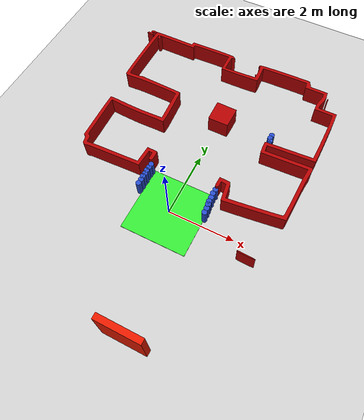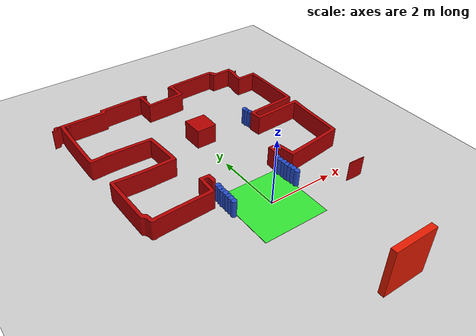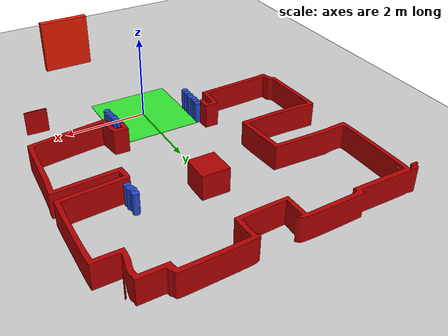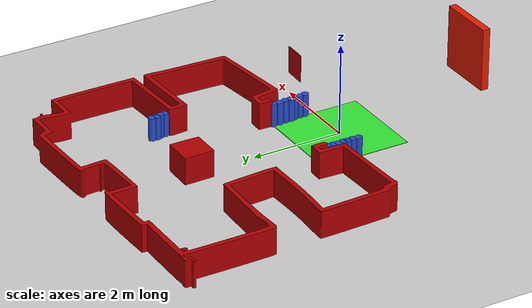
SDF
<sdf version="1.6">
 <world name="default">
  <model name="ground_plane">
   <static>1</static>
   <link name="link">
    <collision name="collision">
     <geometry><plane><normal>0 0 1</normal><size>100 100</size></plane></geometry>
     <surface><friction><ode><mu>100</mu><mu2>50</mu2></ode></friction></surface>
    </collision>
    <visual name="visual">
     <cast_shadows>0</cast_shadows>
     <geometry><plane><normal>0 0 1</normal><size>100 100</size></plane></geometry>
     <material>
      <script><uri>file://media/materials/scripts/gazebo.material</uri><name>Gazebo/Grey</name></script>
     </material>
    </visual>
   </link>
  </model>
  <light name="sun" type="directional">
   <pose>0 0 10 0 -0 0</pose>
   <diffuse>0.8 0.8 0.8 1</diffuse>
   <specular>0.2 0.2 0.2 1</specular>
   <attenuation>
    <range>1000</range>
    <constant>0.9</constant>
    <linear>0.01</linear>
    <quadratic>0.001</quadratic>
   </attenuation>
   <direction>-0.5 0.1 -0.9</direction>
  </light>
  <model name="my_mesh">
   <static>1</static>
   <link name="body">
    <visual name="visual"><geometry><mesh><uri>model://worlds/batlab.dae</uri></mesh></geometry></visual>
    <collision name="visual"><geometry><mesh><uri>model://worlds/batlab.dae</uri></mesh></geometry></collision>
   </link>
  </model>
  <gravity>0 0 -9.8</gravity>
  <magnetic_field>6e-06 2.3e-05 -4.2e-05</magnetic_field>
  <atmosphere type="adiabatic"/>
  <physics name="default_physics" default="0" type="ode">
   <max_step_size>0.001</max_step_size>
   <real_time_factor>1</real_time_factor>
   <real_time_update_rate>1000</real_time_update_rate>
  </physics>
  <scene><ambient>0.4 0.4 0.4 1</ambient><background>0.7 0.7 0.7 1</background><shadows>1</shadows></scene>
  <audio><device>default</device></audio>
  <spherical_coordinates>
   <surface_model>EARTH_WGS84</surface_model>
   <latitude_deg>0</latitude_deg>
   <longitude_deg>0</longitude_deg>
   <elevation>0</elevation>
   <heading_deg>0</heading_deg>
  </spherical_coordinates>
  <model name="start_region">
   <static>1</static>
   <link name="link_0">
    <inertial>
     <mass>1</mass>
     <inertia>
      <ixx>0.166667</ixx>
      <ixy>0</ixy>
      <ixz>0</ixz>
      <iyy>0.166667</iyy>
      <iyz>0</iyz>
      <izz>0.166667</izz>
     </inertia>
    </inertial>
    <visual name="visual">
     <geometry><box><size>2 2 0.01</size></box></geometry>
     <material>
      <lighting>1</lighting>
      <script><uri>file://media/materials/scripts/gazebo.material</uri><name>Gazebo/Grey</name></script>
      <shader type="vertex"><normal_map>__default__</normal_map></shader>
      <ambient>0.2 0.9 0.2 1</ambient>
      <diffuse>0.7 0.7 0.7 1</diffuse>
      <specular>0.01 0.01 0.01 1</specular>
      <emissive>0 0 0 1</emissive>
     </material>
    </visual>
   </link>
   <static>0</static>
   <pose>-0.00388 0.005095 0 0 -0 0</pose>
  </model>
  <model name="Cylinder">
   <static>1</static>
   <link name="link_0">
    <inertial>
     <mass>1</mass>
     <inertia><ixx>0.145833</ixx><ixy>0</ixy><ixz>0</ixz><iyy>0.145833</iyy><iyz>0</iyz><izz>0.125</izz></inertia>
    </inertial>
    <visual name="visual">
     <geometry><cylinder><radius>0.08</radius><length>1</length></cylinder></geometry>
     <material>
      <lighting>1</lighting>
      <script><uri>file://media/materials/scripts/gazebo.material</uri><name>Gazebo/Blue</name></script>
      <ambient>0.3 0 1 1</ambient>
      <diffuse>0.7 0.7 0.7 1</diffuse>
      <specular>0.01 0.01 0.01 1</specular>
      <emissive>0 0 0 1</emissive>
      <shader type="vertex"><normal_map>__default__</normal_map></shader>
     </material>
    </visual>
    <collision name="collision">
     <geometry><cylinder><radius>0.08</radius><length>1</length></cylinder></geometry>
     <surface>
      <friction>
       <ode><mu>1</mu><mu2>1</mu2><fdir1>0 0 0</fdir1><slip1>0</slip1><slip2>0</slip2></ode>
       <torsional>
        <coefficient>1</coefficient>
        <patch_radius>0</patch_radius>
        <surface_radius>0</surface_radius>
        <use_patch_radius>1</use_patch_radius>
        <ode><slip>0</slip></ode>
       </torsional>
      </friction>
      <bounce><restitution_coefficient>0</restitution_coefficient><threshold>1e+06</threshold></bounce>
      <contact>
       <collide_without_contact>0</collide_without_contact>
       <collide_without_contact_bitmask>1</collide_without_contact_bitmask>
       <collide_bitmask>1</collide_bitmask>
       <ode>
        <soft_cfm>0</soft_cfm>
        <soft_erp>0.2</soft_erp>
        <kp>1e+13</kp>
        <kd>1</kd>
        <max_vel>0.01</max_vel>
        <min_depth>0</min_depth>
       </ode>
       <bullet>
        <split_impulse>1</split_impulse>
        <split_impulse_penetration_threshold>-0.01</split_impulse_penetration_threshold>
        <soft_cfm>0</soft_cfm>
        <soft_erp>0.2</soft_erp>
        <kp>1e+13</kp>
        <kd>1</kd>
       </bullet>
      </contact>
     </surface>
    </collision>
   </link>
   <static>0</static>
   <pose>1.72717 3.07781 0 0 -0 0</pose>
  </model>
  <model name="Cylinder_0">
   <static>1</static>
   <link name="link_0">
    <inertial>
     <mass>1</mass>
     <inertia><ixx>0.145833</ixx><ixy>0</ixy><ixz>0</ixz><iyy>0.145833</iyy><iyz>0</iyz><izz>0.125</izz></inertia>
    </inertial>
    <visual name="visual">
     <geometry><cylinder><radius>0.08</radius><length>1</length></cylinder></geometry>
     <material>
      <lighting>1</lighting>
      <script><uri>file://media/materials/scripts/gazebo.material</uri><name>Gazebo/Blue</name></script>
      <ambient>0.3 0 1 1</ambient>
      <diffuse>0.7 0.7 0.7 1</diffuse>
      <specular>0.01 0.01 0.01 1</specular>
      <emissive>0 0 0 1</emissive>
      <shader type="vertex"><normal_map>__default__</normal_map></shader>
     </material>
    </visual>
    <collision name="collision">
     <geometry><cylinder><radius>0.08</radius><length>1</length></cylinder></geometry>
     <surface>
      <friction>
       <ode><mu>1</mu><mu2>1</mu2><fdir1>0 0 0</fdir1><slip1>0</slip1><slip2>0</slip2></ode>
       <torsional>
        <coefficient>1</coefficient>
        <patch_radius>0</patch_radius>
        <surface_radius>0</surface_radius>
        <use_patch_radius>1</use_patch_radius>
        <ode><slip>0</slip></ode>
       </torsional>
      </friction>
      <bounce><restitution_coefficient>0</restitution_coefficient><threshold>1e+06</threshold></bounce>
      <contact>
       <collide_without_contact>0</collide_without_contact>
       <collide_without_contact_bitmask>1</collide_without_contact_bitmask>
       <collide_bitmask>1</collide_bitmask>
       <ode>
        <soft_cfm>0</soft_cfm>
        <soft_erp>0.2</soft_erp>
        <kp>1e+13</kp>
        <kd>1</kd>
        <max_vel>0.01</max_vel>
        <min_depth>0</min_depth>
       </ode>
       <bullet>
        <split_impulse>1</split_impulse>
        <split_impulse_penetration_threshold>-0.01</split_impulse_penetration_threshold>
        <soft_cfm>0</soft_cfm>
        <soft_erp>0.2</soft_erp>
        <kp>1e+13</kp>
        <kd>1</kd>
       </bullet>
      </contact>
     </surface>
    </collision>
   </link>
   <static>0</static>
   <pose>1.71908 3.19648 0 0 -0 0</pose>
  </model>
  <model name="Cylinder_1">
   <static>1</static>
   <link name="link_0">
    <inertial>
     <mass>1</mass>
     <inertia><ixx>0.145833</ixx><ixy>0</ixy><ixz>0</ixz><iyy>0.145833</iyy><iyz>0</iyz><izz>0.125</izz></inertia>
    </inertial>
    <visual name="visual">
     <geometry><cylinder><radius>0.08</radius><length>1</length></cylinder></geometry>
     <material>
      <lighting>1</lighting>
      <script><uri>file://media/materials/scripts/gazebo.material</uri><name>Gazebo/Blue</name></script>
      <ambient>0.3 0 1 1</ambient>
      <diffuse>0.7 0.7 0.7 1</diffuse>
      <specular>0.01 0.01 0.01 1</specular>
      <emissive>0 0 0 1</emissive>
      <shader type="vertex"><normal_map>__default__</normal_map></shader>
     </material>
    </visual>
    <collision name="collision">
     <geometry><cylinder><radius>0.08</radius><length>1</length></cylinder></geometry>
     <surface>
      <friction>
       <ode><mu>1</mu><mu2>1</mu2><fdir1>0 0 0</fdir1><slip1>0</slip1><slip2>0</slip2></ode>
       <torsional>
        <coefficient>1</coefficient>
        <patch_radius>0</patch_radius>
        <surface_radius>0</surface_radius>
        <use_patch_radius>1</use_patch_radius>
        <ode><slip>0</slip></ode>
       </torsional>
      </friction>
      <bounce><restitution_coefficient>0</restitution_coefficient><threshold>1e+06</threshold></bounce>
      <contact>
       <collide_without_contact>0</collide_without_contact>
       <collide_without_contact_bitmask>1</collide_without_contact_bitmask>
       <collide_bitmask>1</collide_bitmask>
       <ode>
        <soft_cfm>0</soft_cfm>
        <soft_erp>0.2</soft_erp>
        <kp>1e+13</kp>
        <kd>1</kd>
        <max_vel>0.01</max_vel>
        <min_depth>0</min_depth>
       </ode>
       <bullet>
        <split_impulse>1</split_impulse>
        <split_impulse_penetration_threshold>-0.01</split_impulse_penetration_threshold>
        <soft_cfm>0</soft_cfm>
        <soft_erp>0.2</soft_erp>
        <kp>1e+13</kp>
        <kd>1</kd>
       </bullet>
      </contact>
     </surface>
    </collision>
   </link>
   <static>0</static>
   <pose>-1.04812 0.915339 0 0 -0 0</pose>
  </model>
  <model name="door">
   <static>1</static>
   <link name="link_0">
    <inertial>
     <mass>0.38942</mass>
     <inertia>
      <ixx>0.104881</ixx>
      <ixy>0</ixy>
      <ixz>0</ixz>
      <iyy>0.157935</iyy>
      <iyz>0</iyz>
      <izz>0.0549026</izz>
     </inertia>
    </inertial>
    <pose>0.194959 -0.315645 0.5 0 -0 0</pose>
    <visual name="visual">
     <geometry><box><size>1.28971 0.16875 1.78981</size></box></geometry>
     <material>
      <lighting>1</lighting>
      <script><uri>file://media/materials/scripts/gazebo.material</uri><name>Gazebo/Grey</name></script>
      <shader type="vertex"><normal_map>__default__</normal_map></shader>
      <ambient>1 0.2 0.3 1</ambient>
      <diffuse>0.9 0.1 0 1</diffuse>
      <specular>0.01 0.01 0.01 1</specular>
      <emissive>0 0 0 1</emissive>
     </material>
    </visual>
    <collision name="collision">
     <geometry><box><size>1.2 0.15 1.5</size></box></geometry>
     <surface>
      <friction>
       <ode><mu>1</mu><mu2>1</mu2><fdir1>0 0 0</fdir1><slip1>0</slip1><slip2>0</slip2></ode>
       <torsional>
        <coefficient>1</coefficient>
        <patch_radius>0</patch_radius>
        <surface_radius>0</surface_radius>
        <use_patch_radius>1</use_patch_radius>
        <ode><slip>0</slip></ode>
       </torsional>
      </friction>
      <bounce><restitution_coefficient>0</restitution_coefficient><threshold>1e+06</threshold></bounce>
      <contact>
       <collide_without_contact>0</collide_without_contact>
       <collide_without_contact_bitmask>1</collide_without_contact_bitmask>
       <collide_bitmask>1</collide_bitmask>
       <ode>
        <soft_cfm>0</soft_cfm>
        <soft_erp>0.2</soft_erp>
        <kp>1e+13</kp>
        <kd>1</kd>
        <max_vel>0.01</max_vel>
        <min_depth>0</min_depth>
       </ode>
       <bullet>
        <split_impulse>1</split_impulse>
        <split_impulse_penetration_threshold>-0.01</split_impulse_penetration_threshold>
        <soft_cfm>0</soft_cfm>
        <soft_erp>0.2</soft_erp>
        <kp>1e+13</kp>
        <kd>1</kd>
       </bullet>
      </contact>
     </surface>
    </collision>
   </link>
   <static>0</static>
   <pose>0.53464 -3.25996 0 0 -0 0</pose>
  </model>
  <model name="Cylinder_2">
   <static>1</static>
   <link name="link_0">
    <inertial>
     <mass>1</mass>
     <inertia><ixx>0.145833</ixx><ixy>0</ixy><ixz>0</ixz><iyy>0.145833</iyy><iyz>0</iyz><izz>0.125</izz></inertia>
    </inertial>
    <visual name="visual">
     <geometry><cylinder><radius>0.08</radius><length>1</length></cylinder></geometry>
     <material>
      <lighting>1</lighting>
      <script><uri>file://media/materials/scripts/gazebo.material</uri><name>Gazebo/Blue</name></script>
      <ambient>0.3 0 1 1</ambient>
      <diffuse>0.7 0.7 0.7 1</diffuse>
      <specular>0.01 0.01 0.01 1</specular>
      <emissive>0 0 0 1</emissive>
      <shader type="vertex"><normal_map>__default__</normal_map></shader>
     </material>
    </visual>
    <collision name="collision">
     <geometry><cylinder><radius>0.08</radius><length>1</length></cylinder></geometry>
     <surface>
      <friction>
       <ode><mu>1</mu><mu2>1</mu2><fdir1>0 0 0</fdir1><slip1>0</slip1><slip2>0</slip2></ode>
       <torsional>
        <coefficient>1</coefficient>
        <patch_radius>0</patch_radius>
        <surface_radius>0</surface_radius>
        <use_patch_radius>1</use_patch_radius>
        <ode><slip>0</slip></ode>
       </torsional>
      </friction>
      <bounce><restitution_coefficient>0</restitution_coefficient><threshold>1e+06</threshold></bounce>
      <contact>
       <collide_without_contact>0</collide_without_contact>
       <collide_without_contact_bitmask>1</collide_without_contact_bitmask>
       <collide_bitmask>1</collide_bitmask>
       <ode>
        <soft_cfm>0</soft_cfm>
        <soft_erp>0.2</soft_erp>
        <kp>1e+13</kp>
        <kd>1</kd>
        <max_vel>0.01</max_vel>
        <min_depth>0</min_depth>
       </ode>
       <bullet>
        <split_impulse>1</split_impulse>
        <split_impulse_penetration_threshold>-0.01</split_impulse_penetration_threshold>
        <soft_cfm>0</soft_cfm>
        <soft_erp>0.2</soft_erp>
        <kp>1e+13</kp>
        <kd>1</kd>
       </bullet>
      </contact>
     </surface>
    </collision>
   </link>
   <static>0</static>
   <pose>-1.05829 0.797361 0 0 -0 0</pose>
  </model>
  <model name="Cylinder_3">
   <static>1</static>
   <link name="link_0">
    <inertial>
     <mass>1</mass>
     <inertia><ixx>0.145833</ixx><ixy>0</ixy><ixz>0</ixz><iyy>0.145833</iyy><iyz>0</iyz><izz>0.125</izz></inertia>
    </inertial>
    <visual name="visual">
     <geometry><cylinder><radius>0.08</radius><length>1</length></cylinder></geometry>
     <material>
      <lighting>1</lighting>
      <script><uri>file://media/materials/scripts/gazebo.material</uri><name>Gazebo/Blue</name></script>
      <ambient>0.3 0 1 1</ambient>
      <diffuse>0.7 0.7 0.7 1</diffuse>
      <specular>0.01 0.01 0.01 1</specular>
      <emissive>0 0 0 1</emissive>
      <shader type="vertex"><normal_map>__default__</normal_map></shader>
     </material>
    </visual>
    <collision name="collision">
     <geometry><cylinder><radius>0.08</radius><length>1</length></cylinder></geometry>
     <surface>
      <friction>
       <ode><mu>1</mu><mu2>1</mu2><fdir1>0 0 0</fdir1><slip1>0</slip1><slip2>0</slip2></ode>
       <torsional>
        <coefficient>1</coefficient>
        <patch_radius>0</patch_radius>
        <surface_radius>0</surface_radius>
        <use_patch_radius>1</use_patch_radius>
        <ode><slip>0</slip></ode>
       </torsional>
      </friction>
      <bounce><restitution_coefficient>0</restitution_coefficient><threshold>1e+06</threshold></bounce>
      <contact>
       <collide_without_contact>0</collide_without_contact>
       <collide_without_contact_bitmask>1</collide_without_contact_bitmask>
       <collide_bitmask>1</collide_bitmask>
       <ode>
        <soft_cfm>0</soft_cfm>
        <soft_erp>0.2</soft_erp>
        <kp>1e+13</kp>
        <kd>1</kd>
        <max_vel>0.01</max_vel>
        <min_depth>0</min_depth>
       </ode>
       <bullet>
        <split_impulse>1</split_impulse>
        <split_impulse_penetration_threshold>-0.01</split_impulse_penetration_threshold>
        <soft_cfm>0</soft_cfm>
        <soft_erp>0.2</soft_erp>
        <kp>1e+13</kp>
        <kd>1</kd>
       </bullet>
      </contact>
     </surface>
    </collision>
   </link>
   <static>0</static>
   <pose>-1.06845 0.686454 0 0 -0 0</pose>
  </model>
  <model name="Cylinder_4">
   <static>1</static>
   <link name="link_0">
    <inertial>
     <mass>1</mass>
     <inertia><ixx>0.145833</ixx><ixy>0</ixy><ixz>0</ixz><iyy>0.145833</iyy><iyz>0</iyz><izz>0.125</izz></inertia>
    </inertial>
    <visual name="visual">
     <geometry><cylinder><radius>0.08</radius><length>1</length></cylinder></geometry>
     <material>
      <lighting>1</lighting>
      <script><uri>file://media/materials/scripts/gazebo.material</uri><name>Gazebo/Blue</name></script>
      <ambient>0.3 0 1 1</ambient>
      <diffuse>0.7 0.7 0.7 1</diffuse>
      <specular>0.01 0.01 0.01 1</specular>
      <emissive>0 0 0 1</emissive>
      <shader type="vertex"><normal_map>__default__</normal_map></shader>
     </material>
    </visual>
    <collision name="collision">
     <geometry><cylinder><radius>0.08</radius><length>1</length></cylinder></geometry>
     <surface>
      <friction>
       <ode><mu>1</mu><mu2>1</mu2><fdir1>0 0 0</fdir1><slip1>0</slip1><slip2>0</slip2></ode>
       <torsional>
        <coefficient>1</coefficient>
        <patch_radius>0</patch_radius>
        <surface_radius>0</surface_radius>
        <use_patch_radius>1</use_patch_radius>
        <ode><slip>0</slip></ode>
       </torsional>
      </friction>
      <bounce><restitution_coefficient>0</restitution_coefficient><threshold>1e+06</threshold></bounce>
      <contact>
       <collide_without_contact>0</collide_without_contact>
       <collide_without_contact_bitmask>1</collide_without_contact_bitmask>
       <collide_bitmask>1</collide_bitmask>
       <ode>
        <soft_cfm>0</soft_cfm>
        <soft_erp>0.2</soft_erp>
        <kp>1e+13</kp>
        <kd>1</kd>
        <max_vel>0.01</max_vel>
        <min_depth>0</min_depth>
       </ode>
       <bullet>
        <split_impulse>1</split_impulse>
        <split_impulse_penetration_threshold>-0.01</split_impulse_penetration_threshold>
        <soft_cfm>0</soft_cfm>
        <soft_erp>0.2</soft_erp>
        <kp>1e+13</kp>
        <kd>1</kd>
       </bullet>
      </contact>
     </surface>
    </collision>
   </link>
   <static>0</static>
   <pose>-1.05499 0.567438 0 0 -0 0</pose>
  </model>
  <model name="Cylinder_5">
   <static>1</static>
   <link name="link_0">
    <inertial>
     <mass>1</mass>
     <inertia><ixx>0.145833</ixx><ixy>0</ixy><ixz>0</ixz><iyy>0.145833</iyy><iyz>0</iyz><izz>0.125</izz></inertia>
    </inertial>
    <visual name="visual">
     <geometry><cylinder><radius>0.08</radius><length>1</length></cylinder></geometry>
     <material>
      <lighting>1</lighting>
      <script><uri>file://media/materials/scripts/gazebo.material</uri><name>Gazebo/Blue</name></script>
      <ambient>0.3 0 1 1</ambient>
      <diffuse>0.7 0.7 0.7 1</diffuse>
      <specular>0.01 0.01 0.01 1</specular>
      <emissive>0 0 0 1</emissive>
      <shader type="vertex"><normal_map>__default__</normal_map></shader>
     </material>
    </visual>
    <collision name="collision">
     <geometry><cylinder><radius>0.08</radius><length>1</length></cylinder></geometry>
     <surface>
      <friction>
       <ode><mu>1</mu><mu2>1</mu2><fdir1>0 0 0</fdir1><slip1>0</slip1><slip2>0</slip2></ode>
       <torsional>
        <coefficient>1</coefficient>
        <patch_radius>0</patch_radius>
        <surface_radius>0</surface_radius>
        <use_patch_radius>1</use_patch_radius>
        <ode><slip>0</slip></ode>
       </torsional>
      </friction>
      <bounce><restitution_coefficient>0</restitution_coefficient><threshold>1e+06</threshold></bounce>
      <contact>
       <collide_without_contact>0</collide_without_contact>
       <collide_without_contact_bitmask>1</collide_without_contact_bitmask>
       <collide_bitmask>1</collide_bitmask>
       <ode>
        <soft_cfm>0</soft_cfm>
        <soft_erp>0.2</soft_erp>
        <kp>1e+13</kp>
        <kd>1</kd>
        <max_vel>0.01</max_vel>
        <min_depth>0</min_depth>
       </ode>
       <bullet>
        <split_impulse>1</split_impulse>
        <split_impulse_penetration_threshold>-0.01</split_impulse_penetration_threshold>
        <soft_cfm>0</soft_cfm>
        <soft_erp>0.2</soft_erp>
        <kp>1e+13</kp>
        <kd>1</kd>
       </bullet>
      </contact>
     </surface>
    </collision>
   </link>
   <static>0</static>
   <pose>0.972159 0.986093 0 0 -0 0</pose>
  </model>
  <model name="Cylinder_6">
   <static>1</static>
   <link name="link_0">
    <inertial>
     <mass>1</mass>
     <inertia><ixx>0.145833</ixx><ixy>0</ixy><ixz>0</ixz><iyy>0.145833</iyy><iyz>0</iyz><izz>0.125</izz></inertia>
    </inertial>
    <visual name="visual">
     <geometry><cylinder><radius>0.08</radius><length>1</length></cylinder></geometry>
     <material>
      <lighting>1</lighting>
      <script><uri>file://media/materials/scripts/gazebo.material</uri><name>Gazebo/Blue</name></script>
      <ambient>0.3 0 1 1</ambient>
      <diffuse>0.7 0.7 0.7 1</diffuse>
      <specular>0.01 0.01 0.01 1</specular>
      <emissive>0 0 0 1</emissive>
      <shader type="vertex"><normal_map>__default__</normal_map></shader>
     </material>
    </visual>
    <collision name="collision">
     <geometry><cylinder><radius>0.08</radius><length>1</length></cylinder></geometry>
     <surface>
      <friction>
       <ode><mu>1</mu><mu2>1</mu2><fdir1>0 0 0</fdir1><slip1>0</slip1><slip2>0</slip2></ode>
       <torsional>
        <coefficient>1</coefficient>
        <patch_radius>0</patch_radius>
        <surface_radius>0</surface_radius>
        <use_patch_radius>1</use_patch_radius>
        <ode><slip>0</slip></ode>
       </torsional>
      </friction>
      <bounce><restitution_coefficient>0</restitution_coefficient><threshold>1e+06</threshold></bounce>
      <contact>
       <collide_without_contact>0</collide_without_contact>
       <collide_without_contact_bitmask>1</collide_without_contact_bitmask>
       <collide_bitmask>1</collide_bitmask>
       <ode>
        <soft_cfm>0</soft_cfm>
        <soft_erp>0.2</soft_erp>
        <kp>1e+13</kp>
        <kd>1</kd>
        <max_vel>0.01</max_vel>
        <min_depth>0</min_depth>
       </ode>
       <bullet>
        <split_impulse>1</split_impulse>
        <split_impulse_penetration_threshold>-0.01</split_impulse_penetration_threshold>
        <soft_cfm>0</soft_cfm>
        <soft_erp>0.2</soft_erp>
        <kp>1e+13</kp>
        <kd>1</kd>
       </bullet>
      </contact>
     </surface>
    </collision>
   </link>
   <static>0</static>
   <pose>0.959655 0.847759 0 0 -0 0</pose>
  </model>
  <model name="Cylinder_7">
   <static>1</static>
   <link name="link_0">
    <inertial>
     <mass>1</mass>
     <inertia><ixx>0.145833</ixx><ixy>0</ixy><ixz>0</ixz><iyy>0.145833</iyy><iyz>0</iyz><izz>0.125</izz></inertia>
    </inertial>
    <visual name="visual">
     <geometry><cylinder><radius>0.08</radius><length>1</length></cylinder></geometry>
     <material>
      <lighting>1</lighting>
      <script><uri>file://media/materials/scripts/gazebo.material</uri><name>Gazebo/Blue</name></script>
      <ambient>0.3 0 1 1</ambient>
      <diffuse>0.7 0.7 0.7 1</diffuse>
      <specular>0.01 0.01 0.01 1</specular>
      <emissive>0 0 0 1</emissive>
      <shader type="vertex"><normal_map>__default__</normal_map></shader>
     </material>
    </visual>
    <collision name="collision">
     <geometry><cylinder><radius>0.08</radius><length>1</length></cylinder></geometry>
     <surface>
      <friction>
       <ode><mu>1</mu><mu2>1</mu2><fdir1>0 0 0</fdir1><slip1>0</slip1><slip2>0</slip2></ode>
       <torsional>
        <coefficient>1</coefficient>
        <patch_radius>0</patch_radius>
        <surface_radius>0</surface_radius>
        <use_patch_radius>1</use_patch_radius>
        <ode><slip>0</slip></ode>
       </torsional>
      </friction>
      <bounce><restitution_coefficient>0</restitution_coefficient><threshold>1e+06</threshold></bounce>
      <contact>
       <collide_without_contact>0</collide_without_contact>
       <collide_without_contact_bitmask>1</collide_without_contact_bitmask>
       <collide_bitmask>1</collide_bitmask>
       <ode>
        <soft_cfm>0</soft_cfm>
        <soft_erp>0.2</soft_erp>
        <kp>1e+13</kp>
        <kd>1</kd>
        <max_vel>0.01</max_vel>
        <min_depth>0</min_depth>
       </ode>
       <bullet>
        <split_impulse>1</split_impulse>
        <split_impulse_penetration_threshold>-0.01</split_impulse_penetration_threshold>
        <soft_cfm>0</soft_cfm>
        <soft_erp>0.2</soft_erp>
        <kp>1e+13</kp>
        <kd>1</kd>
       </bullet>
      </contact>
     </surface>
    </collision>
   </link>
   <static>0</static>
   <pose>0.976445 0.708405 0 0 -0 0</pose>
  </model>
  <model name="Cylinder_8">
   <static>1</static>
   <link name="link_0">
    <inertial>
     <mass>1</mass>
     <inertia><ixx>0.145833</ixx><ixy>0</ixy><ixz>0</ixz><iyy>0.145833</iyy><iyz>0</iyz><izz>0.125</izz></inertia>
    </inertial>
    <visual name="visual">
     <geometry><cylinder><radius>0.08</radius><length>1</length></cylinder></geometry>
     <material>
      <lighting>1</lighting>
      <script><uri>file://media/materials/scripts/gazebo.material</uri><name>Gazebo/Blue</name></script>
      <ambient>0.3 0 1 1</ambient>
      <diffuse>0.7 0.7 0.7 1</diffuse>
      <specular>0.01 0.01 0.01 1</specular>
      <emissive>0 0 0 1</emissive>
      <shader type="vertex"><normal_map>__default__</normal_map></shader>
     </material>
    </visual>
    <collision name="collision">
     <geometry><cylinder><radius>0.08</radius><length>1</length></cylinder></geometry>
     <surface>
      <friction>
       <ode><mu>1</mu><mu2>1</mu2><fdir1>0 0 0</fdir1><slip1>0</slip1><slip2>0</slip2></ode>
       <torsional>
        <coefficient>1</coefficient>
        <patch_radius>0</patch_radius>
        <surface_radius>0</surface_radius>
        <use_patch_radius>1</use_patch_radius>
        <ode><slip>0</slip></ode>
       </torsional>
      </friction>
      <bounce><restitution_coefficient>0</restitution_coefficient><threshold>1e+06</threshold></bounce>
      <contact>
       <collide_without_contact>0</collide_without_contact>
       <collide_without_contact_bitmask>1</collide_without_contact_bitmask>
       <collide_bitmask>1</collide_bitmask>
       <ode>
        <soft_cfm>0</soft_cfm>
        <soft_erp>0.2</soft_erp>
        <kp>1e+13</kp>
        <kd>1</kd>
        <max_vel>0.01</max_vel>
        <min_depth>0</min_depth>
       </ode>
       <bullet>
        <split_impulse>1</split_impulse>
        <split_impulse_penetration_threshold>-0.01</split_impulse_penetration_threshold>
        <soft_cfm>0</soft_cfm>
        <soft_erp>0.2</soft_erp>
        <kp>1e+13</kp>
        <kd>1</kd>
       </bullet>
      </contact>
     </surface>
    </collision>
   </link>
   <static>0</static>
   <pose>0.973907 0.577395 0 0 -0 0</pose>
  </model>
  <model name="Cylinder_9">
   <static>1</static>
   <link name="link_0">
    <inertial>
     <mass>1</mass>
     <inertia><ixx>0.145833</ixx><ixy>0</ixy><ixz>0</ixz><iyy>0.145833</iyy><iyz>0</iyz><izz>0.125</izz></inertia>
    </inertial>
    <visual name="visual">
     <geometry><cylinder><radius>0.08</radius><length>1</length></cylinder></geometry>
     <material>
      <lighting>1</lighting>
      <script><uri>file://media/materials/scripts/gazebo.material</uri><name>Gazebo/Blue</name></script>
      <ambient>0.3 0 1 1</ambient>
      <diffuse>0.7 0.7 0.7 1</diffuse>
      <specular>0.01 0.01 0.01 1</specular>
      <emissive>0 0 0 1</emissive>
      <shader type="vertex"><normal_map>__default__</normal_map></shader>
     </material>
    </visual>
    <collision name="collision">
     <geometry><cylinder><radius>0.08</radius><length>1</length></cylinder></geometry>
     <surface>
      <friction>
       <ode><mu>1</mu><mu2>1</mu2><fdir1>0 0 0</fdir1><slip1>0</slip1><slip2>0</slip2></ode>
       <torsional>
        <coefficient>1</coefficient>
        <patch_radius>0</patch_radius>
        <surface_radius>0</surface_radius>
        <use_patch_radius>1</use_patch_radius>
        <ode><slip>0</slip></ode>
       </torsional>
      </friction>
      <bounce><restitution_coefficient>0</restitution_coefficient><threshold>1e+06</threshold></bounce>
      <contact>
       <collide_without_contact>0</collide_without_contact>
       <collide_without_contact_bitmask>1</collide_without_contact_bitmask>
       <collide_bitmask>1</collide_bitmask>
       <ode>
        <soft_cfm>0</soft_cfm>
        <soft_erp>0.2</soft_erp>
        <kp>1e+13</kp>
        <kd>1</kd>
        <max_vel>0.01</max_vel>
        <min_depth>0</min_depth>
       </ode>
       <bullet>
        <split_impulse>1</split_impulse>
        <split_impulse_penetration_threshold>-0.01</split_impulse_penetration_threshold>
        <soft_cfm>0</soft_cfm>
        <soft_erp>0.2</soft_erp>
        <kp>1e+13</kp>
        <kd>1</kd>
       </bullet>
      </contact>
     </surface>
    </collision>
   </link>
   <static>0</static>
   <pose>0.991469 0.483909 0 0 -0 0</pose>
  </model>
  <model name="Cylinder_10">
   <static>1</static>
   <link name="link_0">
    <inertial>
     <mass>1</mass>
     <inertia><ixx>0.145833</ixx><ixy>0</ixy><ixz>0</ixz><iyy>0.145833</iyy><iyz>0</iyz><izz>0.125</izz></inertia>
    </inertial>
    <visual name="visual">
     <geometry><cylinder><radius>0.08</radius><length>1</length></cylinder></geometry>
     <material>
      <lighting>1</lighting>
      <script><uri>file://media/materials/scripts/gazebo.material</uri><name>Gazebo/Blue</name></script>
      <ambient>0.3 0 1 1</ambient>
      <diffuse>0.7 0.7 0.7 1</diffuse>
      <specular>0.01 0.01 0.01 1</specular>
      <emissive>0 0 0 1</emissive>
      <shader type="vertex"><normal_map>__default__</normal_map></shader>
     </material>
    </visual>
    <collision name="collision">
     <geometry><cylinder><radius>0.08</radius><length>1</length></cylinder></geometry>
     <surface>
      <friction>
       <ode><mu>1</mu><mu2>1</mu2><fdir1>0 0 0</fdir1><slip1>0</slip1><slip2>0</slip2></ode>
       <torsional>
        <coefficient>1</coefficient>
        <patch_radius>0</patch_radius>
        <surface_radius>0</surface_radius>
        <use_patch_radius>1</use_patch_radius>
        <ode><slip>0</slip></ode>
       </torsional>
      </friction>
      <bounce><restitution_coefficient>0</restitution_coefficient><threshold>1e+06</threshold></bounce>
      <contact>
       <collide_without_contact>0</collide_without_contact>
       <collide_without_contact_bitmask>1</collide_without_contact_bitmask>
       <collide_bitmask>1</collide_bitmask>
       <ode>
        <soft_cfm>0</soft_cfm>
        <soft_erp>0.2</soft_erp>
        <kp>1e+13</kp>
        <kd>1</kd>
        <max_vel>0.01</max_vel>
        <min_depth>0</min_depth>
       </ode>
       <bullet>
        <split_impulse>1</split_impulse>
        <split_impulse_penetration_threshold>-0.01</split_impulse_penetration_threshold>
        <soft_cfm>0</soft_cfm>
        <soft_erp>0.2</soft_erp>
        <kp>1e+13</kp>
        <kd>1</kd>
       </bullet>
      </contact>
     </surface>
    </collision>
   </link>
   <static>0</static>
   <pose>1.68961 3.28156 0 0 -0 0</pose>
  </model>
  <model name="Cylinder_11">
   <static>1</static>
   <link name="link_0">
    <inertial>
     <mass>1</mass>
     <inertia><ixx>0.145833</ixx><ixy>0</ixy><ixz>0</ixz><iyy>0.145833</iyy><iyz>0</iyz><izz>0.125</izz></inertia>
    </inertial>
    <visual name="visual">
     <geometry><cylinder><radius>0.08</radius><length>1</length></cylinder></geometry>
     <material>
      <lighting>1</lighting>
      <script><uri>file://media/materials/scripts/gazebo.material</uri><name>Gazebo/Blue</name></script>
      <ambient>0.3 0 1 1</ambient>
      <diffuse>0.7 0.7 0.7 1</diffuse>
      <specular>0.01 0.01 0.01 1</specular>
      <emissive>0 0 0 1</emissive>
      <shader type="vertex"><normal_map>__default__</normal_map></shader>
     </material>
    </visual>
    <collision name="collision">
     <geometry><cylinder><radius>0.08</radius><length>1</length></cylinder></geometry>
     <surface>
      <friction>
       <ode><mu>1</mu><mu2>1</mu2><fdir1>0 0 0</fdir1><slip1>0</slip1><slip2>0</slip2></ode>
       <torsional>
        <coefficient>1</coefficient>
        <patch_radius>0</patch_radius>
        <surface_radius>0</surface_radius>
        <use_patch_radius>1</use_patch_radius>
        <ode><slip>0</slip></ode>
       </torsional>
      </friction>
      <bounce><restitution_coefficient>0</restitution_coefficient><threshold>1e+06</threshold></bounce>
      <contact>
       <collide_without_contact>0</collide_without_contact>
       <collide_without_contact_bitmask>1</collide_without_contact_bitmask>
       <collide_bitmask>1</collide_bitmask>
       <ode>
        <soft_cfm>0</soft_cfm>
        <soft_erp>0.2</soft_erp>
        <kp>1e+13</kp>
        <kd>1</kd>
        <max_vel>0.01</max_vel>
        <min_depth>0</min_depth>
       </ode>
       <bullet>
        <split_impulse>1</split_impulse>
        <split_impulse_penetration_threshold>-0.01</split_impulse_penetration_threshold>
        <soft_cfm>0</soft_cfm>
        <soft_erp>0.2</soft_erp>
        <kp>1e+13</kp>
        <kd>1</kd>
       </bullet>
      </contact>
     </surface>
    </collision>
   </link>
   <static>0</static>
   <pose>-1.06621 0.466648 0 0 -0 0</pose>
  </model>
  <model name="Cylinder_12">
   <static>1</static>
   <link name="link_0">
    <inertial>
     <mass>1</mass>
     <inertia><ixx>0.145833</ixx><ixy>0</ixy><ixz>0</ixz><iyy>0.145833</iyy><iyz>0</iyz><izz>0.125</izz></inertia>
    </inertial>
    <visual name="visual">
     <geometry><cylinder><radius>0.08</radius><length>1</length></cylinder></geometry>
     <material>
      <lighting>1</lighting>
      <script><uri>file://media/materials/scripts/gazebo.material</uri><name>Gazebo/Blue</name></script>
      <ambient>0.3 0 1 1</ambient>
      <diffuse>0.7 0.7 0.7 1</diffuse>
      <specular>0.01 0.01 0.01 1</specular>
      <emissive>0 0 0 1</emissive>
      <shader type="vertex"><normal_map>__default__</normal_map></shader>
     </material>
    </visual>
    <collision name="collision">
     <geometry><cylinder><radius>0.08</radius><length>1</length></cylinder></geometry>
     <surface>
      <friction>
       <ode><mu>1</mu><mu2>1</mu2><fdir1>0 0 0</fdir1><slip1>0</slip1><slip2>0</slip2></ode>
       <torsional>
        <coefficient>1</coefficient>
        <patch_radius>0</patch_radius>
        <surface_radius>0</surface_radius>
        <use_patch_radius>1</use_patch_radius>
        <ode><slip>0</slip></ode>
       </torsional>
      </friction>
      <bounce><restitution_coefficient>0</restitution_coefficient><threshold>1e+06</threshold></bounce>
      <contact>
       <collide_without_contact>0</collide_without_contact>
       <collide_without_contact_bitmask>1</collide_without_contact_bitmask>
       <collide_bitmask>1</collide_bitmask>
       <ode>
        <soft_cfm>0</soft_cfm>
        <soft_erp>0.2</soft_erp>
        <kp>1e+13</kp>
        <kd>1</kd>
        <max_vel>0.01</max_vel>
        <min_depth>0</min_depth>
       </ode>
       <bullet>
        <split_impulse>1</split_impulse>
        <split_impulse_penetration_threshold>-0.01</split_impulse_penetration_threshold>
        <soft_cfm>0</soft_cfm>
        <soft_erp>0.2</soft_erp>
        <kp>1e+13</kp>
        <kd>1</kd>
       </bullet>
      </contact>
     </surface>
    </collision>
   </link>
   <static>0</static>
   <pose>-1.06129 0.349768 0 0 -0 0</pose>
  </model>
  <model name="Cylinder_13">
   <static>1</static>
   <link name="link_0">
    <inertial>
     <mass>1</mass>
     <inertia><ixx>0.145833</ixx><ixy>0</ixy><ixz>0</ixz><iyy>0.145833</iyy><iyz>0</iyz><izz>0.125</izz></inertia>
    </inertial>
    <visual name="visual">
     <geometry><cylinder><radius>0.08</radius><length>1</length></cylinder></geometry>
     <material>
      <lighting>1</lighting>
      <script><uri>file://media/materials/scripts/gazebo.material</uri><name>Gazebo/Blue</name></script>
      <ambient>0.3 0 1 1</ambient>
      <diffuse>0.7 0.7 0.7 1</diffuse>
      <specular>0.01 0.01 0.01 1</specular>
      <emissive>0 0 0 1</emissive>
      <shader type="vertex"><normal_map>__default__</normal_map></shader>
     </material>
    </visual>
    <collision name="collision">
     <geometry><cylinder><radius>0.08</radius><length>1</length></cylinder></geometry>
     <surface>
      <friction>
       <ode><mu>1</mu><mu2>1</mu2><fdir1>0 0 0</fdir1><slip1>0</slip1><slip2>0</slip2></ode>
       <torsional>
        <coefficient>1</coefficient>
        <patch_radius>0</patch_radius>
        <surface_radius>0</surface_radius>
        <use_patch_radius>1</use_patch_radius>
        <ode><slip>0</slip></ode>
       </torsional>
      </friction>
      <bounce><restitution_coefficient>0</restitution_coefficient><threshold>1e+06</threshold></bounce>
      <contact>
       <collide_without_contact>0</collide_without_contact>
       <collide_without_contact_bitmask>1</collide_without_contact_bitmask>
       <collide_bitmask>1</collide_bitmask>
       <ode>
        <soft_cfm>0</soft_cfm>
        <soft_erp>0.2</soft_erp>
        <kp>1e+13</kp>
        <kd>1</kd>
        <max_vel>0.01</max_vel>
        <min_depth>0</min_depth>
       </ode>
       <bullet>
        <split_impulse>1</split_impulse>
        <split_impulse_penetration_threshold>-0.01</split_impulse_penetration_threshold>
        <soft_cfm>0</soft_cfm>
        <soft_erp>0.2</soft_erp>
        <kp>1e+13</kp>
        <kd>1</kd>
       </bullet>
      </contact>
     </surface>
    </collision>
   </link>
   <static>0</static>
   <pose>-1.06785 0.215635 0 0 -0 0</pose>
  </model>
  <model name="Cylinder_14">
   <static>1</static>
   <link name="link_0">
    <inertial>
     <mass>1</mass>
     <inertia><ixx>0.145833</ixx><ixy>0</ixy><ixz>0</ixz><iyy>0.145833</iyy><iyz>0</iyz><izz>0.125</izz></inertia>
    </inertial>
    <visual name="visual">
     <geometry><cylinder><radius>0.08</radius><length>1</length></cylinder></geometry>
     <material>
      <lighting>1</lighting>
      <script><uri>file://media/materials/scripts/gazebo.material</uri><name>Gazebo/Blue</name></script>
      <ambient>0.3 0 1 1</ambient>
      <diffuse>0.7 0.7 0.7 1</diffuse>
      <specular>0.01 0.01 0.01 1</specular>
      <emissive>0 0 0 1</emissive>
      <shader type="vertex"><normal_map>__default__</normal_map></shader>
     </material>
    </visual>
    <collision name="collision">
     <geometry><cylinder><radius>0.08</radius><length>1</length></cylinder></geometry>
     <surface>
      <friction>
       <ode><mu>1</mu><mu2>1</mu2><fdir1>0 0 0</fdir1><slip1>0</slip1><slip2>0</slip2></ode>
       <torsional>
        <coefficient>1</coefficient>
        <patch_radius>0</patch_radius>
        <surface_radius>0</surface_radius>
        <use_patch_radius>1</use_patch_radius>
        <ode><slip>0</slip></ode>
       </torsional>
      </friction>
      <bounce><restitution_coefficient>0</restitution_coefficient><threshold>1e+06</threshold></bounce>
      <contact>
       <collide_without_contact>0</collide_without_contact>
       <collide_without_contact_bitmask>1</collide_without_contact_bitmask>
       <collide_bitmask>1</collide_bitmask>
       <ode>
        <soft_cfm>0</soft_cfm>
        <soft_erp>0.2</soft_erp>
        <kp>1e+13</kp>
        <kd>1</kd>
        <max_vel>0.01</max_vel>
        <min_depth>0</min_depth>
       </ode>
       <bullet>
        <split_impulse>1</split_impulse>
        <split_impulse_penetration_threshold>-0.01</split_impulse_penetration_threshold>
        <soft_cfm>0</soft_cfm>
        <soft_erp>0.2</soft_erp>
        <kp>1e+13</kp>
        <kd>1</kd>
       </bullet>
      </contact>
     </surface>
    </collision>
   </link>
   <static>0</static>
   <pose>1.00673 0.357632 0 0 -0 0</pose>
  </model>
  <model name="Cylinder_15">
   <static>1</static>
   <link name="link_0">
    <inertial>
     <mass>1</mass>
     <inertia><ixx>0.145833</ixx><ixy>0</ixy><ixz>0</ixz><iyy>0.145833</iyy><iyz>0</iyz><izz>0.125</izz></inertia>
    </inertial>
    <visual name="visual">
     <geometry><cylinder><radius>0.08</radius><length>1</length></cylinder></geometry>
     <material>
      <lighting>1</lighting>
      <script><uri>file://media/materials/scripts/gazebo.material</uri><name>Gazebo/Blue</name></script>
      <ambient>0.3 0 1 1</ambient>
      <diffuse>0.7 0.7 0.7 1</diffuse>
      <specular>0.01 0.01 0.01 1</specular>
      <emissive>0 0 0 1</emissive>
      <shader type="vertex"><normal_map>__default__</normal_map></shader>
     </material>
    </visual>
    <collision name="collision">
     <geometry><cylinder><radius>0.08</radius><length>1</length></cylinder></geometry>
     <surface>
      <friction>
       <ode><mu>1</mu><mu2>1</mu2><fdir1>0 0 0</fdir1><slip1>0</slip1><slip2>0</slip2></ode>
       <torsional>
        <coefficient>1</coefficient>
        <patch_radius>0</patch_radius>
        <surface_radius>0</surface_radius>
        <use_patch_radius>1</use_patch_radius>
        <ode><slip>0</slip></ode>
       </torsional>
      </friction>
      <bounce><restitution_coefficient>0</restitution_coefficient><threshold>1e+06</threshold></bounce>
      <contact>
       <collide_without_contact>0</collide_without_contact>
       <collide_without_contact_bitmask>1</collide_without_contact_bitmask>
       <collide_bitmask>1</collide_bitmask>
       <ode>
        <soft_cfm>0</soft_cfm>
        <soft_erp>0.2</soft_erp>
        <kp>1e+13</kp>
        <kd>1</kd>
        <max_vel>0.01</max_vel>
        <min_depth>0</min_depth>
       </ode>
       <bullet>
        <split_impulse>1</split_impulse>
        <split_impulse_penetration_threshold>-0.01</split_impulse_penetration_threshold>
        <soft_cfm>0</soft_cfm>
        <soft_erp>0.2</soft_erp>
        <kp>1e+13</kp>
        <kd>1</kd>
       </bullet>
      </contact>
     </surface>
    </collision>
   </link>
   <static>0</static>
   <pose>1.0101 0.220285 0 0 -0 0</pose>
  </model>
  <model name="Cylinder_16">
   <static>1</static>
   <link name="link_0">
    <inertial>
     <mass>1</mass>
     <inertia><ixx>0.145833</ixx><ixy>0</ixy><ixz>0</ixz><iyy>0.145833</iyy><iyz>0</iyz><izz>0.125</izz></inertia>
    </inertial>
    <visual name="visual">
     <geometry><cylinder><radius>0.08</radius><length>1</length></cylinder></geometry>
     <material>
      <lighting>1</lighting>
      <script><uri>file://media/materials/scripts/gazebo.material</uri><name>Gazebo/Blue</name></script>
      <ambient>0.3 0 1 1</ambient>
      <diffuse>0.7 0.7 0.7 1</diffuse>
      <specular>0.01 0.01 0.01 1</specular>
      <emissive>0 0 0 1</emissive>
      <shader type="vertex"><normal_map>__default__</normal_map></shader>
     </material>
    </visual>
    <collision name="collision">
     <geometry><cylinder><radius>0.08</radius><length>1</length></cylinder></geometry>
     <surface>
      <friction>
       <ode><mu>1</mu><mu2>1</mu2><fdir1>0 0 0</fdir1><slip1>0</slip1><slip2>0</slip2></ode>
       <torsional>
        <coefficient>1</coefficient>
        <patch_radius>0</patch_radius>
        <surface_radius>0</surface_radius>
        <use_patch_radius>1</use_patch_radius>
        <ode><slip>0</slip></ode>
       </torsional>
      </friction>
      <bounce><restitution_coefficient>0</restitution_coefficient><threshold>1e+06</threshold></bounce>
      <contact>
       <collide_without_contact>0</collide_without_contact>
       <collide_without_contact_bitmask>1</collide_without_contact_bitmask>
       <collide_bitmask>1</collide_bitmask>
       <ode>
        <soft_cfm>0</soft_cfm>
        <soft_erp>0.2</soft_erp>
        <kp>1e+13</kp>
        <kd>1</kd>
        <max_vel>0.01</max_vel>
        <min_depth>0</min_depth>
       </ode>
       <bullet>
        <split_impulse>1</split_impulse>
        <split_impulse_penetration_threshold>-0.01</split_impulse_penetration_threshold>
        <soft_cfm>0</soft_cfm>
        <soft_erp>0.2</soft_erp>
        <kp>1e+13</kp>
        <kd>1</kd>
       </bullet>
      </contact>
     </surface>
    </collision>
   </link>
   <static>0</static>
   <pose>1.69576 3.39701 0 0 -0 0</pose>
  </model>
 </world>
</sdf>
